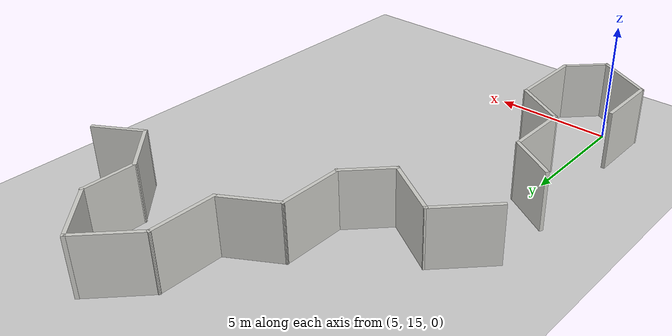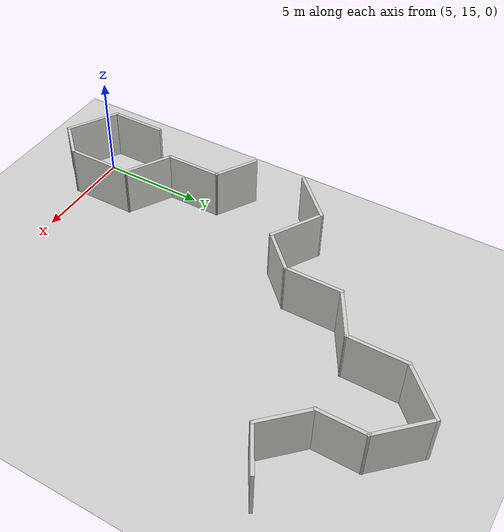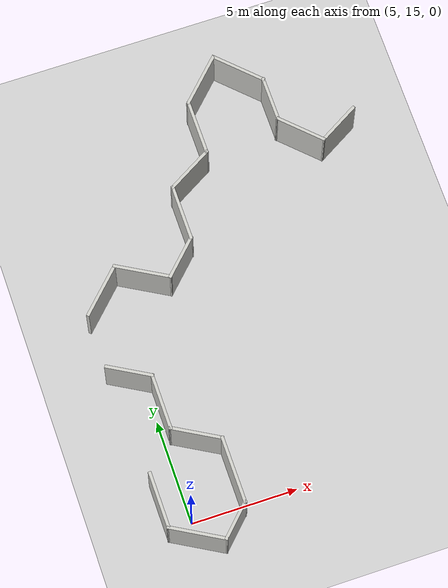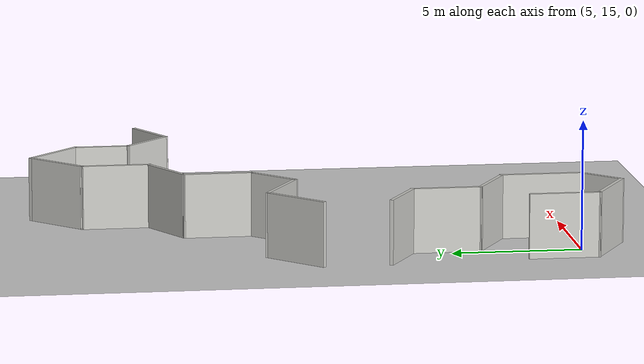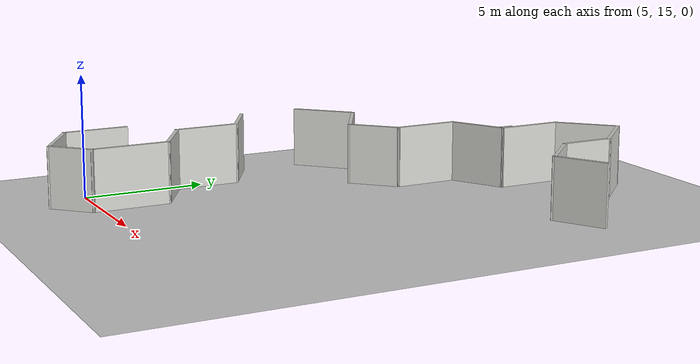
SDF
<sdf version="1.6">
 <world name="default">
  <model name="ground_plane">
   <pose>50 50 0 0 -0 0</pose>
   <static>1</static>
   <link name="link">
    <collision name="collision">
     <geometry><plane><normal>0 0 1</normal><size>100 100</size></plane></geometry>
     <surface><friction><ode><mu>100</mu><mu2>50</mu2></ode></friction></surface>
    </collision>
    <visual name="visual">
     <cast_shadows>0</cast_shadows>
     <geometry><plane><normal>0 0 1</normal><size>100 100</size></plane></geometry>
     <material>
      <script><uri>file://media/materials/scripts/gazebo.material</uri><name>Gazebo/Grey</name></script>
     </material>
    </visual>
   </link>
  </model>
  <model name="maze_1">
   <pose>17.3845 3.82743 0 0 -0 1.57331</pose>
   <link name="Wall_153">
    <collision name="Wall_153_Collision">
     <geometry><box><size>2.25 0.15 2.5</size></box></geometry>
     <pose>0 0 1.25 0 -0 0</pose>
    </collision>
    <visual name="Wall_153_Visual">
     <pose>0 0 1.25 0 -0 0</pose>
     <geometry><box><size>2.25 0.15 2.5</size></box></geometry>
     <material>
      <script><uri>file://media/materials/scripts/gazebo.material</uri><name>Gazebo/CeilingTiled</name></script>
      <ambient>1 1 1 1</ambient>
     </material>
     <meta><layer>0</layer></meta>
    </visual>
    <pose>26.4883 -0.00866 0 0 -0 2.0944</pose>
   </link>
   <link name="Wall_154">
    <collision name="Wall_154_Collision">
     <geometry><box><size>2.5 0.15 2.5</size></box></geometry>
     <pose>0 0 1.25 0 -0 0</pose>
    </collision>
    <visual name="Wall_154_Visual">
     <pose>0 0 1.25 0 -0 0</pose>
     <geometry><box><size>2.5 0.15 2.5</size></box></geometry>
     <material>
      <script><uri>file://media/materials/scripts/gazebo.material</uri><name>Gazebo/CeilingTiled</name></script>
      <ambient>1 1 1 1</ambient>
     </material>
     <meta><layer>0</layer></meta>
    </visual>
    <pose>26.7941 1.73152 0 0 -0 0.785398</pose>
   </link>
   <link name="Wall_155">
    <collision name="Wall_155_Collision">
     <geometry><box><size>2.25 0.15 2.5</size></box></geometry>
     <pose>0 0 1.25 0 -0 0</pose>
    </collision>
    <visual name="Wall_155_Visual">
     <pose>0 0 1.25 0 -0 0</pose>
     <geometry><box><size>2.25 0.15 2.5</size></box></geometry>
     <material>
      <script><uri>file://media/materials/scripts/gazebo.material</uri><name>Gazebo/CeilingTiled</name></script>
      <ambient>1 1 1 1</ambient>
     </material>
     <meta><layer>0</layer></meta>
    </visual>
    <pose>28.675 2.56237 0 0 -0 0</pose>
   </link>
   <link name="Wall_156">
    <collision name="Wall_156_Collision">
     <geometry><box><size>2.75 0.15 2.5</size></box></geometry>
     <pose>0 0 1.25 0 -0 0</pose>
    </collision>
    <visual name="Wall_156_Visual">
     <pose>0 0 1.25 0 -0 0</pose>
     <geometry><box><size>2.75 0.15 2.5</size></box></geometry>
     <material>
      <script><uri>file://media/materials/scripts/gazebo.material</uri><name>Gazebo/CeilingTiled</name></script>
      <ambient>1 1 1 1</ambient>
     </material>
     <meta><layer>0</layer></meta>
    </visual>
    <pose>30.6442 3.48161 0 0 -0 0.785398</pose>
   </link>
   <link name="Wall_157">
    <collision name="Wall_157_Collision">
     <geometry><box><size>2.75 0.15 2.5</size></box></geometry>
     <pose>0 0 1.25 0 -0 0</pose>
    </collision>
    <visual name="Wall_157_Visual">
     <pose>0 0 1.25 0 -0 0</pose>
     <geometry><box><size>2.75 0.15 2.5</size></box></geometry>
     <material>
      <script><uri>file://media/materials/scripts/gazebo.material</uri><name>Gazebo/CeilingTiled</name></script>
      <ambient>1 1 1 1</ambient>
     </material>
     <meta><layer>0</layer></meta>
    </visual>
    <pose>30.6442 5.32008 0 0 -0 2.35619</pose>
   </link>
   <link name="Wall_158">
    <collision name="Wall_158_Collision">
     <geometry><box><size>2.75 0.15 2.5</size></box></geometry>
     <pose>0 0 1.25 0 -0 0</pose>
    </collision>
    <visual name="Wall_158_Visual">
     <pose>0 0 1.25 0 -0 0</pose>
     <geometry><box><size>2.75 0.15 2.5</size></box></geometry>
     <material>
      <script><uri>file://media/materials/scripts/gazebo.material</uri><name>Gazebo/CeilingTiled</name></script>
      <ambient>1 1 1 1</ambient>
     </material>
     <meta><layer>0</layer></meta>
    </visual>
    <pose>28.425 6.23932 0 0 -0 3.14159</pose>
   </link>
   <link name="Wall_159">
    <collision name="Wall_159_Collision">
     <geometry><box><size>2.5 0.15 2.5</size></box></geometry>
     <pose>0 0 1.25 0 -0 0</pose>
    </collision>
    <visual name="Wall_159_Visual">
     <pose>0 0 1.25 0 -0 0</pose>
     <geometry><box><size>2.5 0.15 2.5</size></box></geometry>
     <material>
      <script><uri>file://media/materials/scripts/gazebo.material</uri><name>Gazebo/CeilingTiled</name></script>
      <ambient>1 1 1 1</ambient>
     </material>
     <meta><layer>0</layer></meta>
    </visual>
    <pose>26.5375 7.2569 0 0 -0 2.0944</pose>
   </link>
   <link name="Wall_160">
    <collision name="Wall_160_Collision">
     <geometry><box><size>2.75 0.15 2.5</size></box></geometry>
     <pose>0 0 1.25 0 -0 0</pose>
    </collision>
    <visual name="Wall_160_Visual">
     <pose>0 0 1.25 0 -0 0</pose>
     <geometry><box><size>2.75 0.15 2.5</size></box></geometry>
     <material>
      <script><uri>file://media/materials/scripts/gazebo.material</uri><name>Gazebo/CeilingTiled</name></script>
      <ambient>1 1 1 1</ambient>
     </material>
     <meta><layer>0</layer></meta>
    </visual>
    <pose>24.65 8.27448 0 0 -0 3.14159</pose>
   </link>
   <link name="Wall_161">
    <collision name="Wall_161_Collision">
     <geometry><box><size>2.25 0.15 2.5</size></box></geometry>
     <pose>0 0 1.25 0 -0 0</pose>
    </collision>
    <visual name="Wall_161_Visual">
     <pose>0 0 1.25 0 -0 0</pose>
     <geometry><box><size>2.25 0.15 2.5</size></box></geometry>
     <material>
      <script><uri>file://media/materials/scripts/gazebo.material</uri><name>Gazebo/CeilingTiled</name></script>
      <ambient>1 1 1 1</ambient>
     </material>
     <meta><layer>0</layer></meta>
    </visual>
    <pose>22.6075 9.01694 0 0 -0 2.35619</pose>
   </link>
   <link name="Wall_162">
    <collision name="Wall_162_Collision">
     <geometry><box><size>2.75 0.15 2.5</size></box></geometry>
     <pose>0 0 1.25 0 -0 0</pose>
    </collision>
    <visual name="Wall_162_Visual">
     <pose>0 0 1.25 0 -0 0</pose>
     <geometry><box><size>2.75 0.15 2.5</size></box></geometry>
     <material>
      <script><uri>file://media/materials/scripts/gazebo.material</uri><name>Gazebo/CeilingTiled</name></script>
      <ambient>1 1 1 1</ambient>
     </material>
     <meta><layer>0</layer></meta>
    </visual>
    <pose>22.515 10.8852 0 0 -0 1.0472</pose>
   </link>
   <link name="Wall_163">
    <collision name="Wall_163_Collision">
     <geometry><box><size>2.75 0.15 2.5</size></box></geometry>
     <pose>0 0 1.25 0 -0 0</pose>
    </collision>
    <visual name="Wall_163_Visual">
     <pose>0 0 1.25 0 -0 0</pose>
     <geometry><box><size>2.75 0.15 2.5</size></box></geometry>
     <material>
      <script><uri>file://media/materials/scripts/gazebo.material</uri><name>Gazebo/CeilingTiled</name></script>
      <ambient>1 1 1 1</ambient>
     </material>
     <meta><layer>0</layer></meta>
    </visual>
    <pose>22.2458 12.9303 0 0 -0 2.35619</pose>
   </link>
   <link name="Wall_165">
    <collision name="Wall_165_Collision">
     <geometry><box><size>2.25 0.15 2.5</size></box></geometry>
     <pose>0 0 1.25 0 -0 0</pose>
    </collision>
    <visual name="Wall_165_Visual">
     <pose>0 0 1.25 0 -0 0</pose>
     <geometry><box><size>2.25 0.15 2.5</size></box></geometry>
     <material>
      <script><uri>file://media/materials/scripts/gazebo.material</uri><name>Gazebo/CeilingTiled</name></script>
      <ambient>1 1 1 1</ambient>
     </material>
     <meta><layer>0</layer></meta>
    </visual>
    <pose>18.2016 12.9402 0 0 -0 -2.0944</pose>
   </link>
   <link name="Wall_166">
    <collision name="Wall_166_Collision">
     <geometry><box><size>2.75 0.15 2.5</size></box></geometry>
     <pose>0 0 1.25 0 -0 0</pose>
    </collision>
    <visual name="Wall_166_Visual">
     <pose>0 0 1.25 0 -0 0</pose>
     <geometry><box><size>2.75 0.15 2.5</size></box></geometry>
     <material>
      <script><uri>file://media/materials/scripts/gazebo.material</uri><name>Gazebo/CeilingTiled</name></script>
      <ambient>1 1 1 1</ambient>
     </material>
     <meta><layer>0</layer></meta>
    </visual>
    <pose>16.3766 12.0309 0 0 -0 3.14159</pose>
   </link>
   <link name="Wall_167">
    <collision name="Wall_167_Collision">
     <geometry><box><size>2.5 0.15 2.5</size></box></geometry>
     <pose>0 0 1.25 0 -0 0</pose>
    </collision>
    <visual name="Wall_167_Visual">
     <pose>0 0 1.25 0 -0 0</pose>
     <geometry><box><size>2.5 0.15 2.5</size></box></geometry>
     <material>
      <script><uri>file://media/materials/scripts/gazebo.material</uri><name>Gazebo/CeilingTiled</name></script>
      <ambient>1 1 1 1</ambient>
     </material>
     <meta><layer>0</layer></meta>
    </visual>
    <pose>14.4891 11.0133 0 0 -0 -2.0944</pose>
   </link>
   <link name="Wall_168">
    <collision name="Wall_168_Collision">
     <geometry><box><size>3.25 0.15 2.5</size></box></geometry>
     <pose>0 0 1.25 0 -0 0</pose>
    </collision>
    <visual name="Wall_168_Visual">
     <pose>0 0 1.25 0 -0 0</pose>
     <geometry><box><size>3.25 0.15 2.5</size></box></geometry>
     <material>
      <script><uri>file://media/materials/scripts/gazebo.material</uri><name>Gazebo/CeilingTiled</name></script>
      <ambient>1 1 1 1</ambient>
     </material>
     <meta><layer>0</layer></meta>
    </visual>
    <pose>12.3516 9.99574 0 0 -0 3.14159</pose>
   </link>
   <link name="Wall_169">
    <collision name="Wall_169_Collision">
     <geometry><box><size>2 0.15 2.5</size></box></geometry>
     <pose>0 0 1.25 0 -0 0</pose>
    </collision>
    <visual name="Wall_169_Visual">
     <pose>0 0 1.25 0 -0 0</pose>
     <geometry><box><size>2 0.15 2.5</size></box></geometry>
     <material>
      <script><uri>file://media/materials/scripts/gazebo.material</uri><name>Gazebo/CeilingTiled</name></script>
      <ambient>1 1 1 1</ambient>
     </material>
     <meta><layer>0</layer></meta>
    </visual>
    <pose>10.1475 10.6498 0 0 -0 2.35619</pose>
   </link>
   <link name="Wall_170">
    <collision name="Wall_170_Collision">
     <geometry><box><size>2.75 0.15 2.5</size></box></geometry>
     <pose>0 0 1.25 0 -0 0</pose>
    </collision>
    <visual name="Wall_170_Visual">
     <pose>0 0 1.25 0 -0 0</pose>
     <geometry><box><size>2.75 0.15 2.5</size></box></geometry>
     <material>
      <script><uri>file://media/materials/scripts/gazebo.material</uri><name>Gazebo/CeilingTiled</name></script>
      <ambient>1 1 1 1</ambient>
     </material>
     <meta><layer>0</layer></meta>
    </visual>
    <pose>10.1434 12.4297 0 0 -0 1.0472</pose>
   </link>
   <link name="Wall_171">
    <collision name="Wall_171_Collision">
     <geometry><box><size>2.75 0.15 2.5</size></box></geometry>
     <pose>0 0 1.25 0 -0 0</pose>
    </collision>
    <visual name="Wall_171_Visual">
     <pose>0 0 1.25 0 -0 0</pose>
     <geometry><box><size>2.75 0.15 2.5</size></box></geometry>
     <material>
      <script><uri>file://media/materials/scripts/gazebo.material</uri><name>Gazebo/CeilingTiled</name></script>
      <ambient>1 1 1 1</ambient>
     </material>
     <meta><layer>0</layer></meta>
    </visual>
    <pose>12.0934 13.5556 0 0 -0 0</pose>
   </link>
   <static>1</static>
  </model>
 </world>
</sdf>
